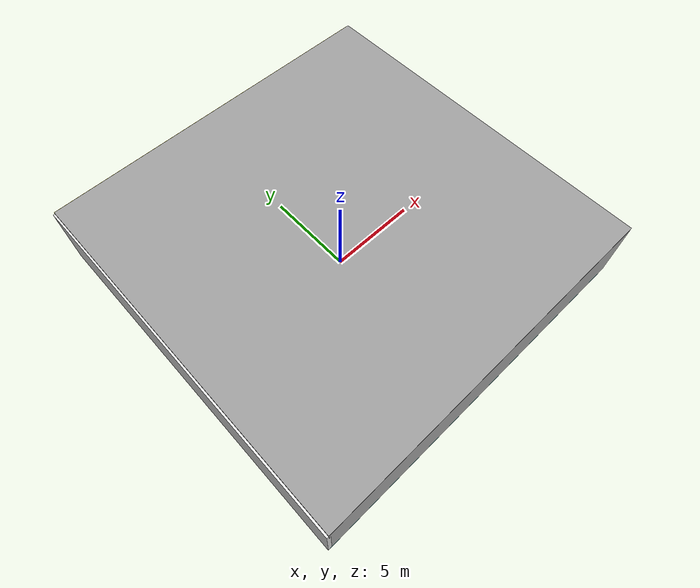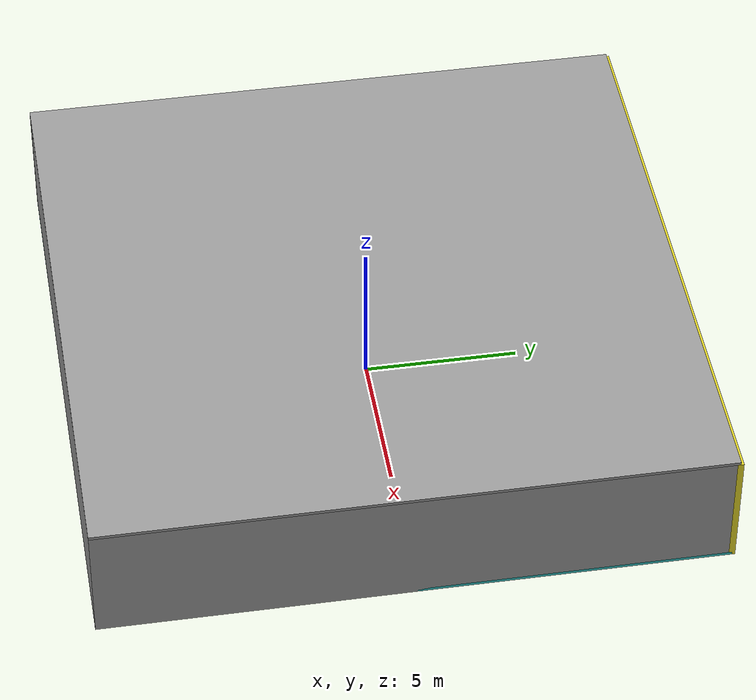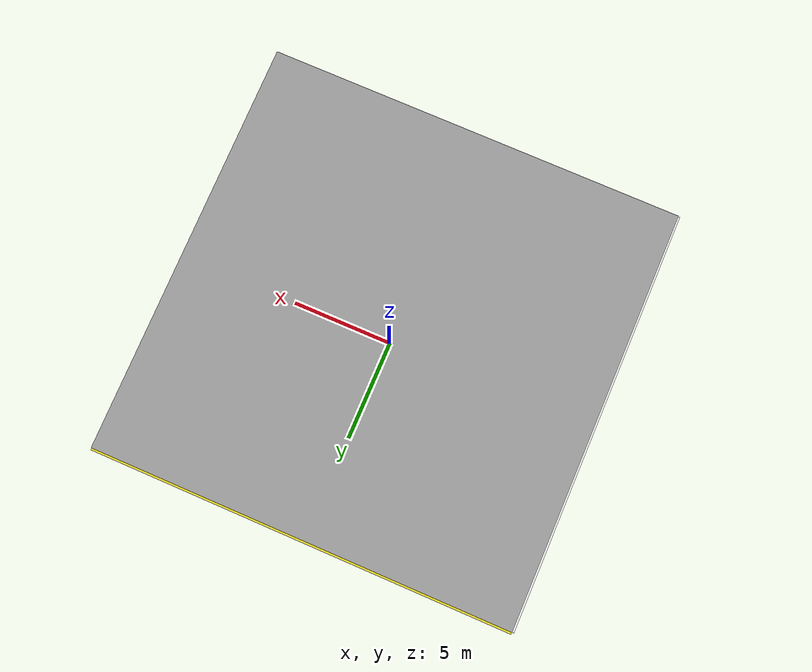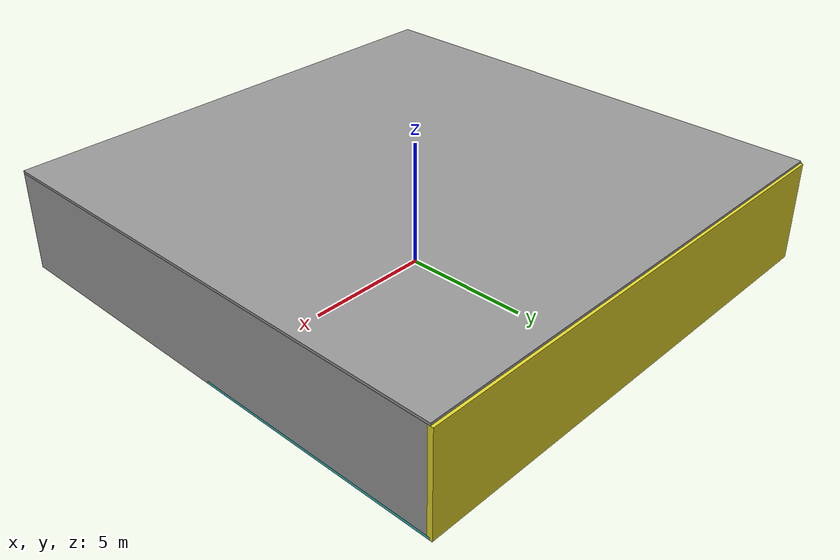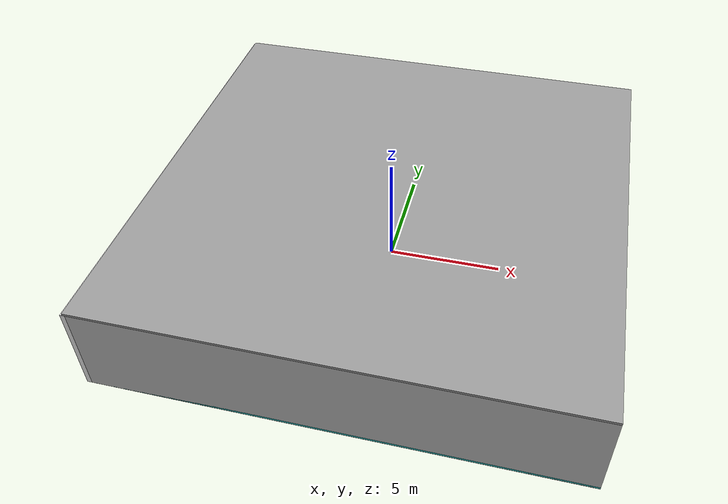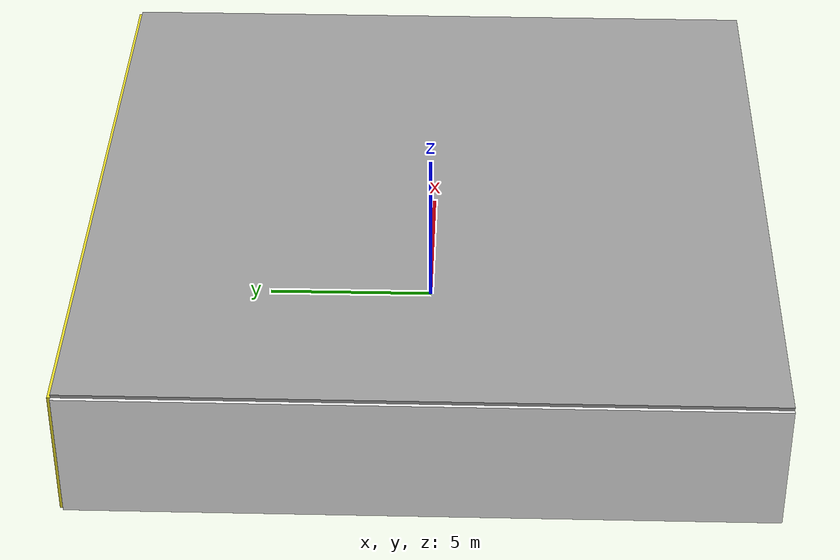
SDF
<sdf version="1.4">
 <world name="default">
  <physics type="ode">
   <max_step_size>0.001</max_step_size>
   <real_time_factor>1</real_time_factor>
   <real_time_update_rate>1000</real_time_update_rate>
   <gravity>0 0 -9.8</gravity>
  </physics>
  <scene><ambient>0.4 0.4 0.4 1</ambient><background>0.7 0.7 0.7 1</background><shadows>1</shadows></scene>
  <model name="Surrounding">
   <static>1</static>
   <link name="Ceiling">
    <collision name="Ceiling_Collision"><geometry><box><size>20 20 0.1</size></box></geometry></collision>
    <visual name="Ceiling_Visual">
     <geometry><box><size>20 20 0.1</size></box></geometry>
     <material>
      <script><uri>file://media/materials/scripts/gazebo.material</uri><name>Gazebo/GreyGradientSky</name></script>
     </material>
    </visual>
    <pose>0 0 4.05 0 0 0</pose>
   </link>
   <link name="Wall_South">
    <collision name="Wall_South_Collision">
     <geometry><box><size>20 0 4</size></box></geometry>
     <pose>0 0 2 0 -0 0</pose>
    </collision>
    <visual name="Wall_South_Visual">
     <pose>0 0 2 0 -0 0</pose>
     <geometry><box><size>20 0 4</size></box></geometry>
     <material>
      <script><uri>file://media/materials/scripts/gazebo.material</uri><name>Gazebo/LightOff</name></script>
     </material>
    </visual>
    <velocity_decay><linear>0</linear><angular>0</angular></velocity_decay>
    <pose>0 -10 0 0 -0 0</pose>
   </link>
   <link name="Wall_East">
    <collision name="Wall_21_Collision">
     <geometry><box><size>20 0 4</size></box></geometry>
     <pose>0 0 2 0 -0 0</pose>
    </collision>
    <visual name="Wall_21_Visual">
     <pose>0 0 2 0 -0 0</pose>
     <geometry><box><size>20 0 4</size></box></geometry>
     <material>
      <script><uri>file://media/materials/scripts/gazebo.material</uri><name>Gazebo/GreyGradientSky</name></script>
     </material>
    </visual>
    <velocity_decay><linear>0</linear><angular>0</angular></velocity_decay>
    <pose>10 0 0 0 -0 1.5708</pose>
   </link>
   <link name="Wall_North">
    <collision name="Wall_22_Collision">
     <geometry><box><size>20 0.2 4</size></box></geometry>
     <pose>0 0 2 0 -0 0</pose>
    </collision>
    <visual name="Wall_22_Visual">
     <pose>0 0 2 0 -0 0</pose>
     <geometry><box><size>20 0.2 4</size></box></geometry>
     <material>
      <script><uri>file://media/materials/scripts/gazebo.material</uri><name>Gazebo/YellowGlow</name></script>
     </material>
    </visual>
    <velocity_decay><linear>0</linear><angular>0</angular></velocity_decay>
    <pose>0 10 0 0 -0 0</pose>
   </link>
   <link name="Wall_West">
    <collision name="Wall_23_Collision">
     <geometry><box><size>20 0.2 4</size></box></geometry>
     <pose>0 0 2 0 -0 0</pose>
    </collision>
    <visual name="Wall_23_Visual">
     <pose>0 0 2 0 -0 0</pose>
     <geometry><box><size>20 0.2 4</size></box></geometry>
     <material>
      <script><uri>file://media/materials/scripts/gazebo.material</uri><name>Gazebo/WhiteGlow</name></script>
     </material>
    </visual>
    <velocity_decay><linear>0</linear><angular>0</angular></velocity_decay>
    <pose>-10 0 0 0 0 -1.5708</pose>
   </link>
   <link name="Ground_link">
    <collision name="collision">
     <pose>0 0 .05 0 -0 0</pose>
     <geometry><box><size>20 20 0.1</size></box></geometry>
    </collision>
    <visual name="visual">
     <pose>0 0 .05 0 -0 0</pose>
     <geometry><box><size>20 20 0.1</size></box></geometry>
     <material>
      <script><uri>file://media/materials/scripts/gazebo.material</uri><name>Gazebo/Turquoise</name></script>
     </material>
    </visual>
   </link>
   <static>1</static>
  </model>
  <spherical_coordinates>
   <surface_model>EARTH_WGS84</surface_model>
   <latitude_deg>0</latitude_deg>
   <longitude_deg>0</longitude_deg>
   <elevation>0</elevation>
   <heading_deg>0</heading_deg>
  </spherical_coordinates>
  <light name="lightball_0" type="diffuse">
   <diffuse>0.8 0.8 0.8 1</diffuse>
   <specular>0.2 0.2 0.2 1</specular>
   <attenuation>
    <range>100</range>
    <constant>0.7</constant>
    <linear>0.01</linear>
    <quadratic>0.001</quadratic>
   </attenuation>
   <direction>-0.5 0.1 -0.9</direction>
   <pose>5.82716799045 -3.42285065887 1.00222179832 0 0 0</pose>
  </light>
  <include>
   <uri>model://construction_cone</uri>
   <pose>-7.07547792755 0.663697819218 0 0 0 0.00779437972571</pose>
  </include>
  <include>
   <uri>model://textured_shapes</uri>
   <pose>-4.32939183391 1.06422272705 0 0 0 2.37371401135</pose>
  </include>
  <include><uri>model://cabinet</uri><pose>-1.95953368317 0.392960193029 0 0 0 2.41979511378</pose></include>
  <include><uri>model://cabinet</uri><pose>0.699152050991 -0.897611612659 0 0 0 0.818009067887</pose></include>
  <include><uri>model://cabinet</uri><pose>2.61737526493 4.87525994115 0 0 0 3.07378563123</pose></include>
  <include>
   <uri>model://robocup_3Dsim_goal</uri>
   <pose>2.35943021437 8.0358638466 0 0 0 1.30970212882</pose>
  </include>
  <include>
   <uri>model://textured_shapes</uri>
   <pose>3.90788451573 -5.51920821805 0 0 0 2.11652622746</pose>
  </include>
  <include><uri>model://cabinet</uri><pose>4.74957828869 3.71205469451 0 0 0 2.50494000352</pose></include>
  <include><uri>model://cabinet</uri><pose>6.72087252731 -8.32922426352 0 0 0 3.08260904435</pose></include>
  <include>
   <uri>model://construction_cone</uri>
   <pose>7.3535090933 -2.39177370541 0 0 0 0.950022057729</pose>
  </include>
 </world>
</sdf>

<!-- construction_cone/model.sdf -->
<sdf version="1.5">
  <model name="Construction Cone">
    <link name="link">
      <collision name="collision">
        <geometry>
          <mesh>
            <scale>10 10 10</scale>
            <uri>file://isr-testbed/construction_cone/meshes/construction_cone.dae</uri>
          </mesh>
        </geometry>
      </collision>
      <visual name="visual">
        <geometry>
          <mesh>
            <scale>10 10 10</scale>
            <uri>file://isr-testbed/construction_cone/meshes/construction_cone.dae</uri>
          </mesh>
        </geometry>
      </visual>
    </link>
  </model>
</sdf>

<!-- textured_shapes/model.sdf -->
<sdf version="1.6">
  <model name="textured_shapes">
    <pose>0 0 0.5 0 0 0</pose>
    <link name="box">
      <pose>0 -1.5 0 0 0 0</pose>
      <collision name="collision">
        <geometry>
          <box>
            <size>1 1 1</size>
          </box>
        </geometry>
      </collision>
      <visual name="visual">
        <geometry>
          <box>
            <size>1 1 1</size>
          </box>
        </geometry>
        <material>
          <script>
            <uri>model://../model_source/models/textured_shapes/materials/scripts</uri>
            <uri>model://../model_source/models/textured_shapes/materials/textures</uri>
            <name>TexturedShape/Squares</name>
          </script>
        </material>
      </visual>
    </link>
    <link name="sphere">
      <collision name="collision">
        <geometry>
          <sphere>
            <radius>0.5</radius>
          </sphere>
        </geometry>
      </collision>
      <visual name="visual">
        <geometry>
          <sphere>
            <radius>0.5</radius>
          </sphere>
        </geometry>
        <material>
          <script>
            <uri>model://../model_source/models/textured_shapes/materials/scripts</uri>
            <uri>model://../model_source/models/textured_shapes/materials/textures</uri>
            <name>TexturedShape/Squares</name>
          </script>
        </material>
      </visual>
    </link>
    <link name="cylinder">
      <pose>0 1.5 0 0 0 0</pose>
      <collision name="collision">
        <geometry>
          <cylinder>
            <radius>0.5</radius>
            <length>1</length>
          </cylinder>
        </geometry>
      </collision>
      <visual name="visual">
        <geometry>
          <cylinder>
            <radius>0.5</radius>
            <length>1</length>
          </cylinder>
        </geometry>
        <material>
          <script>
            <uri>model://../model_source/models/textured_shapes/materials/scripts</uri>
            <uri>model://../model_source/models/textured_shapes/materials/textures</uri>
            <name>TexturedShape/Squares</name>
          </script>
        </material>
      </visual>
    </link>
  </model>
</sdf>

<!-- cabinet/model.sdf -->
<sdf version="1.5">
  <model name="cabinet">
    <static>true</static>
    <link name="cabinet_bottom_plate">
      <inertial>
        <pose>0 0 -1 0 0 0</pose>
        <inertia>
          <ixx>2.050000</ixx>
          <ixy>0</ixy>
          <ixz>0</ixz>
          <iyy>2.050000</iyy>
          <iyz>0</iyz>
          <izz>2.050000</izz>
        </inertia>
        <mass>25.000000</mass>
      </inertial>
      <collision name="cabinet_bottom_plate_geom">
        <pose>0 0 0.010000 0 0 0</pose>
        <geometry>
          <box>
            <size>0.450000 0.450000 0.020000</size>
          </box>
        </geometry>
      </collision>
      <visual name="cabinet_bottom_plate_geom_visual">
        <pose>0 0 0.010000 0 0 0</pose>
        <geometry>
          <box>
            <size>0.450000 0.450000 0.020000</size>
          </box>
        </geometry>
        <material>
          <script>
            <uri>model://media/materials/scripts/gazebo.material</uri>
            <name>Gazebo/Wood</name>
          </script>
        </material>
      </visual>
      <collision name="cabinet_bottom_plate_geom_cabinet_back_plate">
        <pose>0.235000 0 0.510000 0 0 0</pose>
        <geometry>
          <box>
            <size>0.020000 0.450000 1.020000</size>
          </box>
        </geometry>
      </collision>
      <visual name="cabinet_bottom_plate_geom_cabinet_back_plate_visual">
        <pose>0.235000 0 0.510000 0 0 0</pose>
        <geometry>
          <box>
            <size>0.020000 0.450000 1.020000</size>
          </box>
        </geometry>
        <material>
          <script>
            <uri>model://media/materials/scripts/gazebo.material</uri>
            <name>Gazebo/Wood</name>
          </script>
        </material>
      </visual>
      <collision name="cabinet_bottom_plate_geom_cabinet_left_plate">
        <pose>0 0.235000 0.510000 0 0 0</pose>
        <geometry>
          <box>
            <size>0.450000 0.020000 1.020000</size>
          </box>
        </geometry>
      </collision>
      <visual name="cabinet_bottom_plate_geom_cabinet_left_plate_visual">
        <pose>0 0.235000 0.510000 0 0 0</pose>
        <geometry>
          <box>
            <size>0.450000 0.020000 1.020000</size>
          </box>
        </geometry>
        <material>
          <script>
            <uri>model://media/materials/scripts/gazebo.material</uri>
            <name>Gazebo/Wood</name>
          </script>
        </material>
      </visual>
      <collision name="cabinet_bottom_plate_geom_cabinet_middle_plate">
        <pose>0 0 0.510000 0 0 0</pose>
        <geometry>
          <box>
            <size>0.450000 0.450000 0.020000</size>
          </box>
        </geometry>
      </collision>
      <visual name="cabinet_bottom_plate_geom_cabinet_middle_plate_visual">
        <pose>0 0 0.510000 0 0 0</pose>
        <geometry>
          <box>
            <size>0.450000 0.450000 0.020000</size>
          </box>
        </geometry>
        <material>
          <script>
            <uri>model://media/materials/scripts/gazebo.material</uri>
            <name>Gazebo/Wood</name>
          </script>
        </material>
      </visual>
      <collision name="cabinet_bottom_plate_geom_cabinet_right_plate">
        <pose>0 -0.235000 0.510000 0 0 0</pose>
        <geometry>
          <box>
            <size>0.450000 0.020000 1.020000</size>
          </box>
        </geometry>
      </collision>
      <visual name="cabinet_bottom_plate_geom_cabinet_right_plate_visual">
        <pose>0 -0.235000 0.510000 0 0 0</pose>
        <geometry>
          <box>
            <size>0.450000 0.020000 1.020000</size>
          </box>
        </geometry>
        <material>
          <script>
            <uri>model://media/materials/scripts/gazebo.material</uri>
            <name>Gazebo/Wood</name>
          </script>
        </material>
      </visual>
      <collision name="cabinet_bottom_plate_geom_cabinet_top_plate">
        <pose>0 0 1.010000 0 0 0</pose>
        <geometry>
          <box>
            <size>0.450000 0.450000 0.020000</size>
          </box>
        </geometry>
      </collision>
      <visual name="cabinet_bottom_plate_geom_cabinet_top_plate_visual">
        <pose>0 0 1.010000 0 0 0</pose>
        <geometry>
          <box>
            <size>0.450000 0.450000 0.020000</size>
          </box>
        </geometry>
        <material>
          <script>
            <uri>model://media/materials/scripts/gazebo.material</uri>
            <name>Gazebo/Wood</name>
          </script>
        </material>
      </visual>
    </link>
  </model>
</sdf>

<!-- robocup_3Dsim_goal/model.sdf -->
<sdf version="1.5">
  <model name="robocup_3d_goal">
    <static>true</static>
    <link name="left_post">
      <pose>0 1.05 0.45 0 0 0</pose>
      <collision name="collision">
        <geometry>
          <cylinder>
            <radius>0.05</radius>
            <length>0.9</length>
          </cylinder>
        </geometry>
      </collision>
      <visual name="visual">
        <geometry>
          <cylinder>
            <radius>0.05</radius>
            <length>0.9</length>
          </cylinder>
        </geometry>
        <material>
          <script>
            <uri>file://media/materials/scripts/gazebo.material</uri>
            <name>Gazebo/ZincYellow</name>
          </script>
        </material>
      </visual>
    </link>
    <link name="left_support_horiz_lower">
      <pose>0.30 1.05 0.01 0 0 0</pose>
      <collision name="collision">
        <geometry>
          <box>
            <size>0.50 0.02 0.02</size>
          </box>
        </geometry>
      </collision>
      <visual name="visual">
        <geometry>
          <box>
            <size>0.50 0.02 0.02</size>
          </box>
        </geometry>
        <material>
          <script>
            <uri>file://media/materials/scripts/gazebo.material</uri>
            <name>Gazebo/White</name>
          </script>
        </material>
      </visual>
    </link>
    <link name="left_support_horiz_upper">
      <pose>0.30 1.05 0.79 0 0 0</pose>
      <collision name="collision">
        <geometry>
          <box>
            <size>0.50 0.02 0.02</size>
          </box>
        </geometry>
      </collision>
      <visual name="visual">
        <geometry>
          <box>
            <size>0.50 0.02 0.02</size>
          </box>
        </geometry>
        <material>
          <script>
            <uri>file://media/materials/scripts/gazebo.material</uri>
            <name>Gazebo/White</name>
          </script>
        </material>
      </visual>
    </link>
    <link name="left_support_vertical">
      <pose>0.56 1.05 0.4 0 1.5708 0</pose>
      <collision name="collision">
        <geometry>
          <box>
            <size>0.80 0.02 0.02</size>
          </box>
        </geometry>
      </collision>
      <visual name="visual">
        <geometry>
          <box>
            <size>0.80 0.02 0.02</size>
          </box>
        </geometry>
        <material>
          <script>
            <uri>file://media/materials/scripts/gazebo.material</uri>
            <name>Gazebo/White</name>
          </script>
        </material>
      </visual>
    </link>
    <link name="right_support_horiz_lower">
      <pose>0.30 -1.05 0.01 0 0 0</pose>
      <collision name="collision">
        <geometry>
          <box>
            <size>0.50 0.02 0.02</size>
          </box>
        </geometry>
      </collision>
      <visual name="visual">
        <geometry>
          <box>
            <size>0.50 0.02 0.02</size>
          </box>
        </geometry>
        <material>
          <script>
            <uri>file://media/materials/scripts/gazebo.material</uri>
            <name>Gazebo/White</name>
          </script>
        </material>
      </visual>
    </link>
    <link name="right_support_horiz_upper">
      <pose>0.30 -1.05 0.79 0 0 0</pose>
      <collision name="collision">
        <geometry>
          <box>
            <size>0.50 0.02 0.02</size>
          </box>
        </geometry>
      </collision>
      <visual name="visual">
        <geometry>
          <box>
            <size>0.50 0.02 0.02</size>
          </box>
        </geometry>
        <material>
          <script>
            <uri>file://media/materials/scripts/gazebo.material</uri>
            <name>Gazebo/White</name>
          </script>
        </material>
      </visual>
    </link>
    <link name="right_support_vertical">
      <pose>0.56 -1.05 0.4 0 1.5708 0</pose>
      <collision name="collision">
        <geometry>
          <box>
            <size>0.80 0.02 0.02</size>
          </box>
        </geometry>
      </collision>
      <visual name="visual">
        <geometry>
          <box>
            <size>0.80 0.02 0.02</size>
          </box>
        </geometry>
        <material>
          <script>
            <uri>file://media/materials/scripts/gazebo.material</uri>
            <name>Gazebo/White</name>
          </script>
        </material>
      </visual>
    </link>
    <link name="center_support_horiz_lower">
      <pose>0.56 0 0.01 0 1.5708 0</pose>
      <collision name="collision">
        <geometry>
          <box>
            <size>0.02 2.08 0.02</size>
          </box>
        </geometry>
      </collision>
      <visual name="visual">
        <geometry>
          <box>
            <size>0.02 2.08 0.02</size>
          </box>
        </geometry>
        <material>
          <script>
            <uri>file://media/materials/scripts/gazebo.material</uri>
            <name>Gazebo/White</name>
          </script>
        </material>
      </visual>
    </link>
    <link name="center_support_horiz_upper">
      <pose>0.56 0 0.79 0 1.5708 0</pose>
      <collision name="collision">
        <geometry>
          <box>
            <size>0.02 2.08 0.02</size>
          </box>
        </geometry>
      </collision>
      <visual name="visual">
        <geometry>
          <box>
            <size>0.02 2.08 0.02</size>
          </box>
        </geometry>
        <material>
          <script>
            <uri>file://media/materials/scripts/gazebo.material</uri>
            <name>Gazebo/White</name>
          </script>
        </material>
      </visual>
    </link>
    <link name="right_post">
      <pose>0 -1.05 0.45 0 0 0</pose>
      <collision name="collision">
        <geometry>
          <cylinder>
            <radius>0.05</radius>
            <length>0.9</length>
          </cylinder>
        </geometry>
      </collision>
      <visual name="visual">
        <geometry>
          <cylinder>
            <radius>0.05</radius>
            <length>0.9</length>
          </cylinder>
        </geometry>
        <material>
          <script>
            <uri>file://media/materials/scripts/gazebo.material</uri>
            <name>Gazebo/ZincYellow</name>
          </script>
        </material>
      </visual>
    </link>
    <link name="crossbar">
      <pose>0 0 0.85 1.57 1.57 0</pose>
      <collision name="collision">
        <geometry>
          <cylinder>
            <radius>0.05</radius>
            <length>2.0</length>
          </cylinder>
        </geometry>
      </collision>
      <visual name="visual">
        <geometry>
          <cylinder>
            <radius>0.05</radius>
            <length>2.0</length>
          </cylinder>
        </geometry>
        <material>
          <script>
            <uri>file://media/materials/scripts/gazebo.material</uri>
            <name>Gazebo/ZincYellow</name>
          </script>
        </material>
      </visual>
    </link>
    <link name="center_net">
      <pose>0.56 0 0.40 0 0 0</pose>
      <collision name="collision">
        <geometry>
          <box>
            <size>0.01 2.1 0.80</size>
          </box>
        </geometry>
      </collision>
      <visual name="visual">
        <geometry>
          <box>
            <size>0.01 2.1 0.80</size>
          </box>
        </geometry>
        <material>
          <script>
            <uri>model://../model_source/models/robocup09_spl_field/materials/scripts/</uri>
            <uri>model://../model_source/models/robocup09_spl_field/materials/textures/</uri>
            <name>RoboCup/Net</name>
          </script>
        </material>
      </visual>
    </link>
    <link name="left_net">
      <pose>0.30 1.05 0.40 0 0 0</pose>
      <collision name="collision">
        <geometry>
          <box>
            <size>0.50 0.01 0.76</size>
          </box>
        </geometry>
      </collision>
      <visual name="visual">
        <geometry>
          <box>
            <size>0.50 0.01 0.76</size>
          </box>
        </geometry>
        <material>
          <script>
            <uri>model://../model_source/models/robocup09_spl_field/materials/scripts/</uri>
            <uri>model://../model_source/models/robocup09_spl_field/materials/textures/</uri>
            <name>RoboCup/Net</name>
          </script>
        </material>
      </visual>
    </link>
    <link name="right_net">
      <pose>0.30 -1.05 0.40 0 0 0</pose>
      <collision name="collision">
        <geometry>
          <box>
            <size>0.50 0.01 0.76</size>
          </box>
        </geometry>
      </collision>
      <visual name="visual">
        <geometry>
          <box>
            <size>0.50 0.01 0.76</size>
          </box>
        </geometry>
        <material>
          <script>
            <uri>model://../model_source/models/robocup09_spl_field/materials/scripts/</uri>
            <uri>model://../model_source/models/robocup09_spl_field/materials/textures/</uri>
            <name>RoboCup/Net</name>
          </script>
        </material>
      </visual>
    </link>
  </model>
</sdf>
